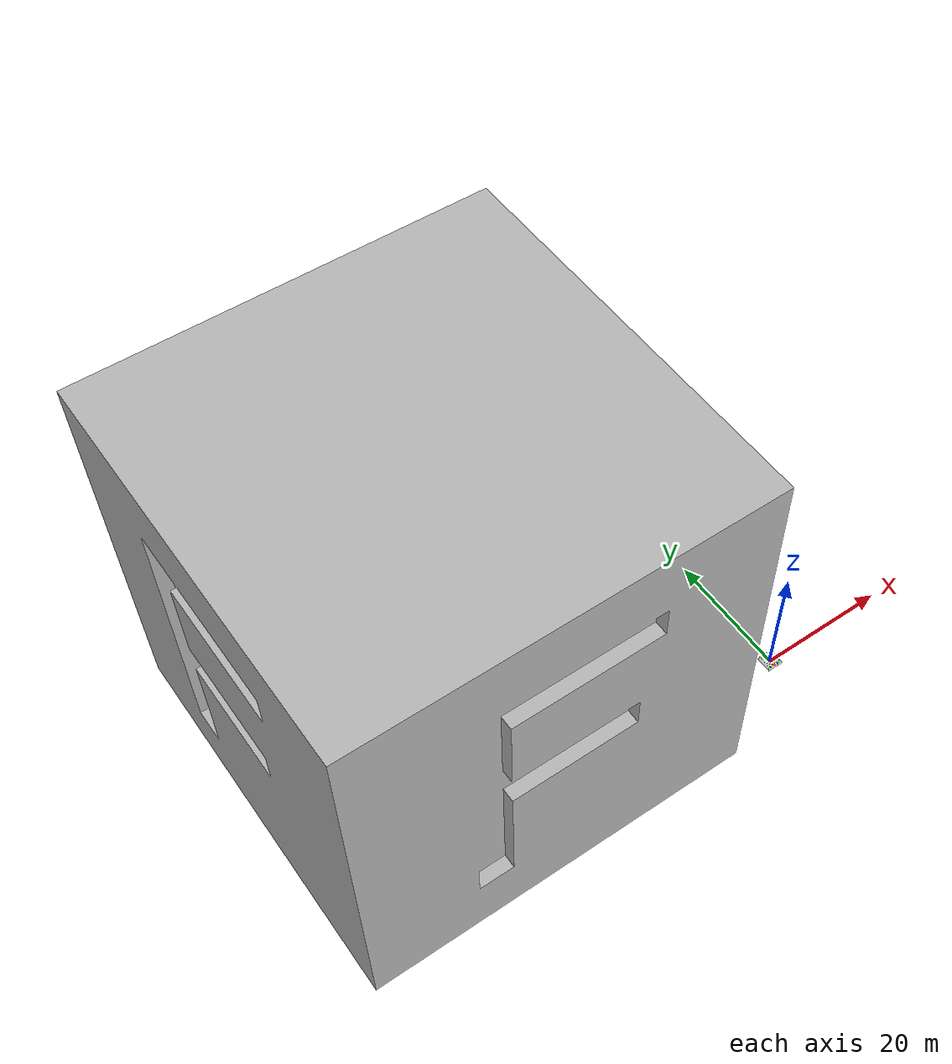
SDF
<?xml version="1.0"?>
<sdf version="1.4">
  <world name="default" xmlns:xacro="http://ros.org/wiki/xacro">
    <light name='sun' type='directional'>
      <cast_shadows>1</cast_shadows>
      <pose>0 0 10 0 -0 0</pose>
      <diffuse>0.8 0.8 0.8 1</diffuse>
      <specular>0.2 0.2 0.2 1</specular>
      <attenuation>
        <range>1000</range>
        <constant>0.9</constant>
        <linear>0.01</linear>
        <quadratic>0.001</quadratic>
      </attenuation>
      <direction>-0.5 0.1 -0.9</direction>
      <spot>
        <inner_angle>0</inner_angle>
        <outer_angle>0</outer_angle>
        <falloff>0</falloff>
      </spot>
    </light>
    <model name="arena">
      <pose>0 0 0  0 0 0</pose>
      <static>1</static>
      <link name="body">
        <collision name='collision'>
          <geometry>
            <mesh>
              <uri>/home/jetson/open_workspace/src/urdf_package/models/arenaieee_collision.dae</uri>
            </mesh>
          </geometry>
          <surface>
            <contact>
              <collide_bitmask>65535</collide_bitmask>
              <ode/>
            </contact>
            <friction>
              <ode>
                <mu>100</mu>
                <mu2>50</mu2>
              </ode>
              <torsional>
                <ode/>
              </torsional>
            </friction>
            <bounce/>
          </surface>
          <max_contacts>10</max_contacts>
        </collision>
        <visual name="visual">
          <geometry>
            <mesh>
              <uri>/home/jetson/open_workspace/src/urdf_package/models/arenaieee.dae</uri>
            </mesh>
          </geometry>
        </visual>
      </link>
    </model>
    <gravity>0 0 -9.8</gravity>
    <magnetic_field>6e-06 2.3e-05 -4.2e-05</magnetic_field>
    <atmosphere type='adiabatic'/>
    <physics type='ode'>
      <max_step_size>0.001</max_step_size>
      <real_time_factor>1</real_time_factor>
      <real_time_update_rate>1000</real_time_update_rate>
    </physics>
    <scene>
      <ambient>0.4 0.4 0.4 1</ambient>
      <background>0.7 0.7 0.7 1</background>
      <shadows>1</shadows>
    </scene>
    <model name='cube1'>
      <pose>1 1 0.03 0 0 0</pose>
      <link name='cube1'>
        <inertial>
          <mass>0.06</mass>
          <inertia>
            <ixx>0.000036</ixx>
            <ixy>0</ixy>
            <ixz>0</ixz>
            <iyy>0.000036</iyy>
            <iyz>0</iyz>
            <izz>0.000036</izz>
          </inertia>
          <pose>0 0 0 0 0 0</pose>
        </inertial>
        <collision name='collision'>
          <geometry>
            <mesh>
              <uri>/home/jetson/open_workspace/src/urdf_package/models/Fv2.dae</uri>
            </mesh>
          </geometry>
          <max_contacts>10</max_contacts>
          <surface>
            <contact>
              <ode/>
            </contact>
            <bounce/>
            <friction>
              <torsional>
                <ode/>
              </torsional>
              <ode/>
            </friction>
          </surface>
        </collision>
        <visual name='visual'>
          <geometry>
            <mesh>
              <uri>/home/jetson/open_workspace/src/urdf_package/models/Fv2.dae</uri>
            </mesh>
          </geometry>
        </visual>
        <self_collide>0</self_collide>
        <enable_wind>0</enable_wind>
        <kinematic>0</kinematic>
      </link>
    </model>
  </world>
</sdf>
